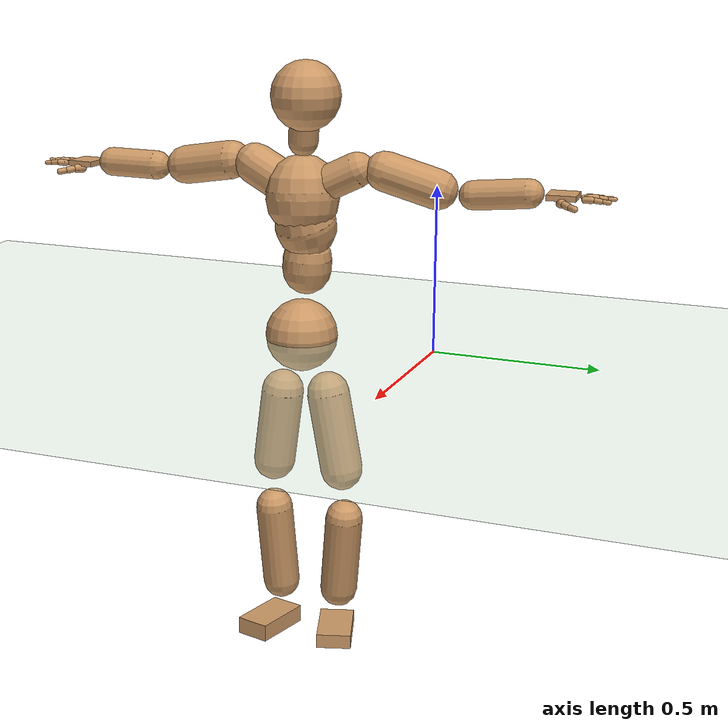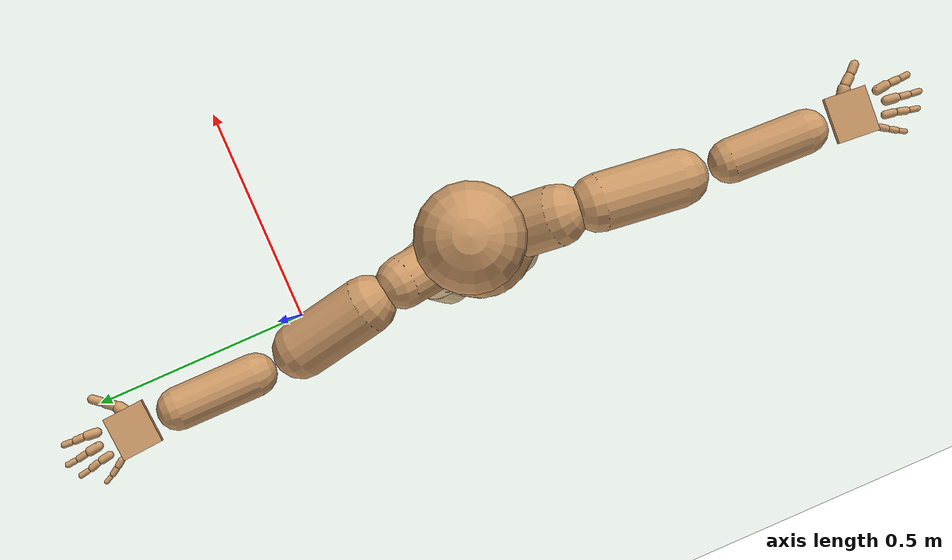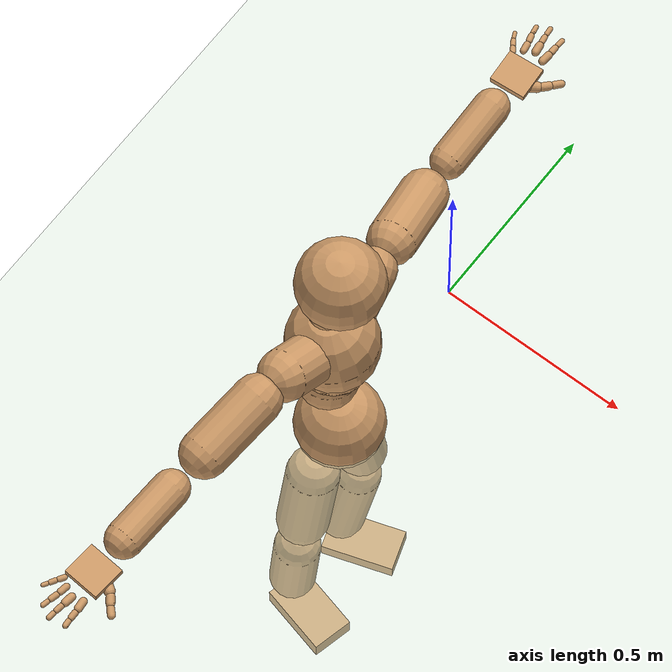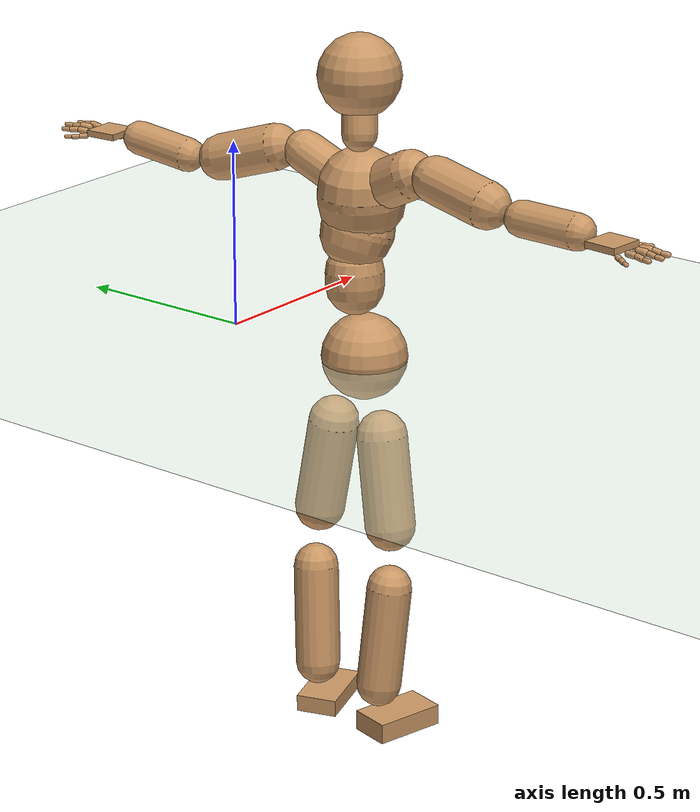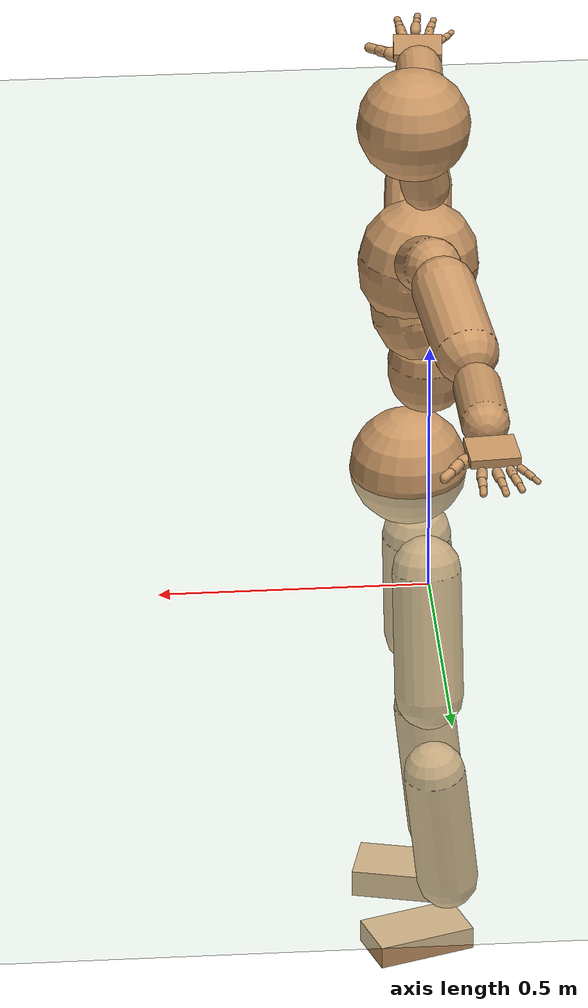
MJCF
<mujoco model="humanoid">
  <compiler coordinate="local" angle="radian"/>
  <default>
    <joint damping="0.0" armature="0.01" stiffness="0.0" limited="true"/>
    <geom conaffinity="1" condim="3" contype="7" margin="0.001" rgba="0.8 0.6 .4 1"/>
  </default>
  <asset>
    <texture type="skybox" builtin="gradient" rgb1=".4 .5 .6" rgb2="0 0 0" width="100" height="100"/>
    <texture builtin="flat" height="1278" mark="cross" markrgb="1 1 1" name="texgeom" random="0.01" rgb1="0.8 0.6 0.4" rgb2="0.8 0.6 0.4" type="cube" width="127"/>
    <texture builtin="checker" height="100" name="texplane" rgb1="0 0 0" rgb2="0.8 0.8 0.8" type="2d" width="100"/>
    <material name="MatPlane" reflectance="0.5" shininess="1" specular="1" texrepeat="60 60" texture="texplane"/>
    <material name="geom" texture="texgeom" texuniform="true"/>
  </asset>
  <worldbody>
    <light cutoff="100" diffuse="1 1 1" dir="-0 0 -1.3" directional="true" exponent="1" pos="0 0 1.3" specular=".1 .1 .1"/>
    <geom conaffinity="1" condim="3" name="floor" pos="0 0 0" rgba="0.8 0.9 0.8 1" size="100 100 .2" type="plane" material="MatPlane"/>
    <body name="Pelvis" pos="0.0013 -0.4284 0.0089">
      <freejoint name="Pelvis"/>
      <geom type="sphere" contype="1" conaffinity="1" density="500" size="0.1118" pos="0.0000 0.0000 0.0000" name="Pelvis"/>
      <body name="L_Hip" pos="-0.0284 0.0616 -0.104">
        <joint name="L_Hip_x" type="hinge" pos="0 0 0" axis="1 0 0" stiffness="800" damping="80" armature="0.02" range="-180.0000 180.0000"/>
        <joint name="L_Hip_y" type="hinge" pos="0 0 0" axis="0 1 0" stiffness="800" damping="80" armature="0.02" range="-180.0000 180.0000"/>
        <joint name="L_Hip_z" type="hinge" pos="0 0 0" axis="0 0 1" stiffness="800" damping="80" armature="0.02" range="-180.0000 180.0000"/>
        <geom type="capsule" contype="1" conaffinity="1" density="500" fromto="-0.0008 0.0150 -0.0830 -0.0033 0.0602 -0.3320" size="0.066" name="L_Hip"/>
        <body name="L_Knee" pos="-0.0042 0.0752 -0.415">
          <joint name="L_Knee_x" type="hinge" pos="0 0 0" axis="1 0 0" stiffness="800" damping="80" armature="0.02" range="-180.0000 180.0000"/>
          <joint name="L_Knee_y" type="hinge" pos="0 0 0" axis="0 1 0" stiffness="800" damping="80" armature="0.02" range="-180.0000 180.0000"/>
          <joint name="L_Knee_z" type="hinge" pos="0 0 0" axis="0 0 1" stiffness="800" damping="80" armature="0.02" range="-180.0000 180.0000"/>
          <geom type="capsule" contype="1" conaffinity="1" density="500" fromto="-0.0098 -0.0099 -0.0867 -0.0393 -0.0395 -0.3469" size="0.059" name="L_Knee"/>
          <body name="L_Ankle" pos="-0.0491 -0.0494 -0.4336">
            <joint name="L_Ankle_x" type="hinge" pos="0 0 0" axis="1 0 0" stiffness="800" damping="80" armature="0.02" range="-180.0000 180.0000"/>
            <joint name="L_Ankle_y" type="hinge" pos="0 0 0" axis="0 1 0" stiffness="800" damping="80" armature="0.02" range="-180.0000 180.0000"/>
            <joint name="L_Ankle_z" type="hinge" pos="0 0 0" axis="0 0 1" stiffness="800" damping="80" armature="0.02" range="-180.0000 180.0000"/>
            <geom type="box" contype="1" conaffinity="1" density="500" pos="0.0699 0.0229 -0.0310" size="0.0953 0.0544 0.0223" quat="0.9875 0.0000 0.0000 0.1579" name="L_Ankle"/>
            <body name="L_Toe" pos="0.1398 0.0459 -0.062">
              <joint name="L_Toe_x" type="hinge" pos="0 0 0" axis="1 0 0" stiffness="500" damping="50" armature="0.02" range="-180.0000 180.0000"/>
              <joint name="L_Toe_y" type="hinge" pos="0 0 0" axis="0 1 0" stiffness="500" damping="50" armature="0.02" range="-180.0000 180.0000"/>
              <joint name="L_Toe_z" type="hinge" pos="0 0 0" axis="0 0 1" stiffness="500" damping="50" armature="0.02" range="-180.0000 180.0000"/>
              <geom type="box" contype="1" conaffinity="1" density="500" pos="0.0000 0.0000 0.0308" size="0.0011 0.0026 0.0011" quat="0.9868 0.0000 0.0000 0.1621" name="L_Toe"/>
            </body>
          </body>
        </body>
      </body>
      <body name="R_Hip" pos="-0.0205 -0.0636 -0.1152">
        <joint name="R_Hip_x" type="hinge" pos="0 0 0" axis="1 0 0" stiffness="800" damping="80" armature="0.02" range="-180.0000 180.0000"/>
        <joint name="R_Hip_y" type="hinge" pos="0 0 0" axis="0 1 0" stiffness="800" damping="80" armature="0.02" range="-180.0000 180.0000"/>
        <joint name="R_Hip_z" type="hinge" pos="0 0 0" axis="0 0 1" stiffness="800" damping="80" armature="0.02" range="-180.0000 180.0000"/>
        <geom type="capsule" contype="1" conaffinity="1" density="500" fromto="-0.0026 -0.0114 -0.0794 -0.0104 -0.0456 -0.3177" size="0.0659" name="R_Hip"/>
        <body name="R_Knee" pos="-0.013 -0.057 -0.3972">
          <joint name="R_Knee_x" type="hinge" pos="0 0 0" axis="1 0 0" stiffness="800" damping="80" armature="0.02" range="-180.0000 180.0000"/>
          <joint name="R_Knee_y" type="hinge" pos="0 0 0" axis="0 1 0" stiffness="800" damping="80" armature="0.02" range="-180.0000 180.0000"/>
          <joint name="R_Knee_z" type="hinge" pos="0 0 0" axis="0 0 1" stiffness="800" damping="80" armature="0.02" range="-180.0000 180.0000"/>
          <geom type="capsule" contype="1" conaffinity="1" density="500" fromto="-0.0095 0.0037 -0.0895 -0.0380 0.0148 -0.3581" size="0.0588" name="R_Knee"/>
          <body name="R_Ankle" pos="-0.0475 0.0185 -0.4476">
            <joint name="R_Ankle_x" type="hinge" pos="0 0 0" axis="1 0 0" stiffness="800" damping="80" armature="0.02" range="-180.0000 180.0000"/>
            <joint name="R_Ankle_y" type="hinge" pos="0 0 0" axis="0 1 0" stiffness="800" damping="80" armature="0.02" range="-180.0000 180.0000"/>
            <joint name="R_Ankle_z" type="hinge" pos="0 0 0" axis="0 0 1" stiffness="800" damping="80" armature="0.02" range="-180.0000 180.0000"/>
            <geom type="box" contype="1" conaffinity="1" density="500" pos="0.0732 -0.0180 -0.0305" size="0.0953 0.0544 0.0271" quat="0.9927 0.0000 0.0000 -0.1206" name="R_Ankle"/>
            <body name="R_Toe" pos="0.1463 -0.0361 -0.0611">
              <joint name="R_Toe_x" type="hinge" pos="0 0 0" axis="1 0 0" stiffness="500" damping="50" armature="0.02" range="-180.0000 180.0000"/>
              <joint name="R_Toe_y" type="hinge" pos="0 0 0" axis="0 1 0" stiffness="500" damping="50" armature="0.02" range="-180.0000 180.0000"/>
              <joint name="R_Toe_z" type="hinge" pos="0 0 0" axis="0 0 1" stiffness="500" damping="50" armature="0.02" range="-180.0000 180.0000"/>
              <geom type="box" contype="1" conaffinity="1" density="500" pos="0.0000 0.0000 0.0255" size="0.0011 0.0026 0.0011" quat="0.9936 0.0000 0.0000 -0.1127" name="R_Toe"/>
            </body>
          </body>
        </body>
      </body>
      <body name="Torso" pos="-0.0384 -0.0024 0.1272">
        <joint name="Torso_x" type="hinge" pos="0 0 0" axis="1 0 0" stiffness="1000" damping="100" armature="0.02" range="-180.0000 180.0000"/>
        <joint name="Torso_y" type="hinge" pos="0 0 0" axis="0 1 0" stiffness="1000" damping="100" armature="0.02" range="-180.0000 180.0000"/>
        <joint name="Torso_z" type="hinge" pos="0 0 0" axis="0 0 1" stiffness="1000" damping="100" armature="0.02" range="-180.0000 180.0000"/>
        <geom type="capsule" contype="1" conaffinity="1" density="500" fromto="0.0033 0.0075 0.1078 0.0022 0.0050 0.0719" size="0.0755" name="Torso"/>
        <body name="Spine" pos="0.0055 0.0125 0.1797">
          <joint name="Spine_x" type="hinge" pos="0 0 0" axis="1 0 0" stiffness="1000" damping="100" armature="0.02" range="-180.0000 180.0000"/>
          <joint name="Spine_y" type="hinge" pos="0 0 0" axis="0 1 0" stiffness="1000" damping="100" armature="0.02" range="-180.0000 180.0000"/>
          <joint name="Spine_z" type="hinge" pos="0 0 0" axis="0 0 1" stiffness="1000" damping="100" armature="0.02" range="-180.0000 180.0000"/>
          <geom type="capsule" contype="1" conaffinity="1" density="500" fromto="0.0129 -0.0059 0.0404 0.0086 -0.0039 0.0270" size="0.0944" name="Spine"/>
          <body name="Chest" pos="0.0215 -0.0098 0.0674">
            <joint name="Chest_x" type="hinge" pos="0 0 0" axis="1 0 0" stiffness="1000" damping="100" armature="0.02" range="-180.0000 180.0000"/>
            <joint name="Chest_y" type="hinge" pos="0 0 0" axis="0 1 0" stiffness="1000" damping="100" armature="0.02" range="-180.0000 180.0000"/>
            <joint name="Chest_z" type="hinge" pos="0 0 0" axis="0 0 1" stiffness="1000" damping="100" armature="0.02" range="-180.0000 180.0000"/>
            <geom type="capsule" contype="1" conaffinity="1" density="500" fromto="-0.0065 -0.0031 0.0705 -0.0043 -0.0021 0.0470" size="0.1125" name="Chest"/>
            <body name="Neck" pos="-0.0243 -0.0107 0.1835">
              <joint name="Neck_x" type="hinge" pos="0 0 0" axis="1 0 0" stiffness="500" damping="50" armature="0.02" range="-180.0000 180.0000"/>
              <joint name="Neck_y" type="hinge" pos="0 0 0" axis="0 1 0" stiffness="500" damping="50" armature="0.02" range="-180.0000 180.0000"/>
              <joint name="Neck_z" type="hinge" pos="0 0 0" axis="0 0 1" stiffness="500" damping="50" armature="0.02" range="-180.0000 180.0000"/>
              <geom type="capsule" contype="1" conaffinity="1" density="500" fromto="0.0060 0.0048 0.0351 0.0242 0.0192 0.1402" size="0.0456" name="Neck"/>
              <body name="Head" pos="0.0302 0.024 0.1753">
                <joint name="Head_x" type="hinge" pos="0 0 0" axis="1 0 0" stiffness="500" damping="50" armature="0.02" range="-180.0000 180.0000"/>
                <joint name="Head_y" type="hinge" pos="0 0 0" axis="0 1 0" stiffness="500" damping="50" armature="0.02" range="-180.0000 180.0000"/>
                <joint name="Head_z" type="hinge" pos="0 0 0" axis="0 0 1" stiffness="500" damping="50" armature="0.02" range="-180.0000 180.0000"/>
                <geom type="sphere" contype="1" conaffinity="1" density="500" size="0.1064" pos="0.0000 0.0000 0.0000" name="Head"/>
              </body>
            </body>
            <body name="L_Thorax" pos="-0.0019 0.0447 0.0843">
              <joint name="L_Thorax_x" type="hinge" pos="0 0 0" axis="1 0 0" stiffness="500" damping="50" armature="0.02" range="-180.0000 180.0000"/>
              <joint name="L_Thorax_y" type="hinge" pos="0 0 0" axis="0 1 0" stiffness="500" damping="50" armature="0.02" range="-180.0000 180.0000"/>
              <joint name="L_Thorax_z" type="hinge" pos="0 0 0" axis="0 0 1" stiffness="500" damping="50" armature="0.02" range="-180.0000 180.0000"/>
              <geom type="capsule" contype="1" conaffinity="1" density="500" fromto="-0.0038 0.0310 0.0150 -0.0151 0.1238 0.0601" size="0.0537" name="L_Thorax"/>
              <body name="L_Shoulder" pos="-0.0189 0.1548 0.0752">
                <joint name="L_Shoulder_x" type="hinge" pos="0 0 0" axis="1 0 0" stiffness="500" damping="50" armature="0.02" range="-180.0000 180.0000"/>
                <joint name="L_Shoulder_y" type="hinge" pos="0 0 0" axis="0 1 0" stiffness="500" damping="50" armature="0.02" range="-180.0000 180.0000"/>
                <joint name="L_Shoulder_z" type="hinge" pos="0 0 0" axis="0 0 1" stiffness="500" damping="50" armature="0.02" range="-180.0000 180.0000"/>
                <geom type="capsule" contype="1" conaffinity="1" density="500" fromto="-0.0094 0.0521 -0.0163 -0.0377 0.2085 -0.0651" size="0.0602" name="L_Shoulder"/>
                <body name="L_Elbow" pos="-0.0472 0.2607 -0.0814">
                  <joint name="L_Elbow_x" type="hinge" pos="0 0 0" axis="1 0 0" stiffness="500" damping="50" armature="0.02" range="-720.0000 720.0000"/>
                  <joint name="L_Elbow_y" type="hinge" pos="0 0 0" axis="0 1 0" stiffness="500" damping="50" armature="0.02" range="-720.0000 720.0000"/>
                  <joint name="L_Elbow_z" type="hinge" pos="0 0 0" axis="0 0 1" stiffness="500" damping="50" armature="0.02" range="-720.0000 720.0000"/>
                  <geom type="capsule" contype="1" conaffinity="1" density="500" fromto="0.0000 0.0551 0.0055 0.0001 0.2206 0.0220" size="0.0443" name="L_Elbow"/>
                  <body name="L_Wrist" pos="0.0001 0.2757 0.0275">
                    <joint name="L_Wrist_x" type="hinge" pos="0 0 0" axis="1 0 0" stiffness="300" damping="30" armature="0.02" range="-180.0000 180.0000"/>
                    <joint name="L_Wrist_y" type="hinge" pos="0 0 0" axis="0 1 0" stiffness="300" damping="30" armature="0.02" range="-180.0000 180.0000"/>
                    <joint name="L_Wrist_z" type="hinge" pos="0 0 0" axis="0 0 1" stiffness="300" damping="30" armature="0.02" range="-180.0000 180.0000"/>
                    <geom type="box" contype="1" conaffinity="1" density="500" pos="-0.0033 0.0458 -0.0059" size="0.0431 0.0458 0.0083" quat="0.7319 0.0000 0.0000 -0.6815" name="L_Wrist"/>
                    <body name="L_Index1" pos="0.0205 0.1074 -0.0089">
                      <joint name="L_Index1_x" type="hinge" pos="0 0 0" axis="1 0 0" stiffness="100" damping="10" armature="0.02" range="-180.0000 180.0000"/>
                      <joint name="L_Index1_y" type="hinge" pos="0 0 0" axis="0 1 0" stiffness="100" damping="10" armature="0.02" range="-180.0000 180.0000"/>
                      <joint name="L_Index1_z" type="hinge" pos="0 0 0" axis="0 0 1" stiffness="100" damping="10" armature="0.02" range="-180.0000 180.0000"/>
                      <geom type="capsule" contype="1" conaffinity="1" density="500" fromto="0.0007 0.0067 0.0003 0.0029 0.0269 0.0013" size="0.0098" name="L_Index1"/>
                      <body name="L_Index2" pos="0.0036 0.0336 0.0016">
                        <joint name="L_Index2_x" type="hinge" pos="0 0 0" axis="1 0 0" stiffness="100" damping="10" armature="0.02" range="-180.0000 180.0000"/>
                        <joint name="L_Index2_y" type="hinge" pos="0 0 0" axis="0 1 0" stiffness="100" damping="10" armature="0.02" range="-180.0000 180.0000"/>
                        <joint name="L_Index2_z" type="hinge" pos="0 0 0" axis="0 0 1" stiffness="100" damping="10" armature="0.02" range="-180.0000 180.0000"/>
                        <geom type="capsule" contype="1" conaffinity="1" density="500" fromto="-0.0001 0.0047 -0.0006 -0.0002 0.0188 -0.0023" size="0.008" name="L_Index2"/>
                        <body name="L_Index3" pos="-0.0003 0.0235 -0.0029">
                          <joint name="L_Index3_x" type="hinge" pos="0 0 0" axis="1 0 0" stiffness="100" damping="10" armature="0.02" range="-180.0000 180.0000"/>
                          <joint name="L_Index3_y" type="hinge" pos="0 0 0" axis="0 1 0" stiffness="100" damping="10" armature="0.02" range="-180.0000 180.0000"/>
                          <joint name="L_Index3_z" type="hinge" pos="0 0 0" axis="0 0 1" stiffness="100" damping="10" armature="0.02" range="-180.0000 180.0000"/>
                          <geom type="capsule" contype="1" conaffinity="1" density="500" fromto="0.0003 0.0051 -0.0002 0.0014 0.0204 -0.0007" size="0.0067" name="L_Index3"/>
                        </body>
                      </body>
                    </body>
                    <body name="L_Middle1" pos="-0.0042 0.1155 -0.0057">
                      <joint name="L_Middle1_x" type="hinge" pos="0 0 0" axis="1 0 0" stiffness="100" damping="10" armature="0.02" range="-180.0000 180.0000"/>
                      <joint name="L_Middle1_y" type="hinge" pos="0 0 0" axis="0 1 0" stiffness="100" damping="10" armature="0.02" range="-180.0000 180.0000"/>
                      <joint name="L_Middle1_z" type="hinge" pos="0 0 0" axis="0 0 1" stiffness="100" damping="10" armature="0.02" range="-180.0000 180.0000"/>
                      <geom type="capsule" contype="1" conaffinity="1" density="500" fromto="-0.0008 0.0064 0.0001 -0.0034 0.0255 0.0005" size="0.0099" name="L_Middle1"/>
                      <body name="L_Middle2" pos="-0.0042 0.0319 0.0006">
                        <joint name="L_Middle2_x" type="hinge" pos="0 0 0" axis="1 0 0" stiffness="100" damping="10" armature="0.02" range="-180.0000 180.0000"/>
                        <joint name="L_Middle2_y" type="hinge" pos="0 0 0" axis="0 1 0" stiffness="100" damping="10" armature="0.02" range="-180.0000 180.0000"/>
                        <joint name="L_Middle2_z" type="hinge" pos="0 0 0" axis="0 0 1" stiffness="100" damping="10" armature="0.02" range="-180.0000 180.0000"/>
                        <geom type="capsule" contype="1" conaffinity="1" density="500" fromto="-0.0009 0.0049 -0.0005 -0.0035 0.0195 -0.0020" size="0.0073" name="L_Middle2"/>
                        <body name="L_Middle3" pos="-0.0043 0.0244 -0.0025">
                          <joint name="L_Middle3_x" type="hinge" pos="0 0 0" axis="1 0 0" stiffness="100" damping="10" armature="0.02" range="-180.0000 180.0000"/>
                          <joint name="L_Middle3_y" type="hinge" pos="0 0 0" axis="0 1 0" stiffness="100" damping="10" armature="0.02" range="-180.0000 180.0000"/>
                          <joint name="L_Middle3_z" type="hinge" pos="0 0 0" axis="0 0 1" stiffness="100" damping="10" armature="0.02" range="-180.0000 180.0000"/>
                          <geom type="capsule" contype="1" conaffinity="1" density="500" fromto="-0.0005 0.0053 -0.0001 -0.0019 0.0211 -0.0004" size="0.0063" name="L_Middle3"/>
                        </body>
                      </body>
                    </body>
                    <body name="L_Pinky1" pos="-0.0471 0.0894 -0.0146">
                      <joint name="L_Pinky1_x" type="hinge" pos="0 0 0" axis="1 0 0" stiffness="100" damping="10" armature="0.02" range="-180.0000 180.0000"/>
                      <joint name="L_Pinky1_y" type="hinge" pos="0 0 0" axis="0 1 0" stiffness="100" damping="10" armature="0.02" range="-180.0000 180.0000"/>
                      <joint name="L_Pinky1_z" type="hinge" pos="0 0 0" axis="0 0 1" stiffness="100" damping="10" armature="0.02" range="-180.0000 180.0000"/>
                      <geom type="capsule" contype="1" conaffinity="1" density="500" fromto="-0.0024 0.0034 -0.0003 -0.0095 0.0136 -0.0014" size="0.0071" name="L_Pinky1"/>
                      <body name="L_Pinky2" pos="-0.0118 0.017 -0.0017">
                        <joint name="L_Pinky2_x" type="hinge" pos="0 0 0" axis="1 0 0" stiffness="100" damping="10" armature="0.02" range="-180.0000 180.0000"/>
                        <joint name="L_Pinky2_y" type="hinge" pos="0 0 0" axis="0 1 0" stiffness="100" damping="10" armature="0.02" range="-180.0000 180.0000"/>
                        <joint name="L_Pinky2_z" type="hinge" pos="0 0 0" axis="0 0 1" stiffness="100" damping="10" armature="0.02" range="-180.0000 180.0000"/>
                        <geom type="capsule" contype="1" conaffinity="1" density="500" fromto="-0.0022 0.0034 -0.0004 -0.0088 0.0135 -0.0016" size="0.0066" name="L_Pinky2"/>
                        <body name="L_Pinky3" pos="-0.011 0.0168 -0.002">
                          <joint name="L_Pinky3_x" type="hinge" pos="0 0 0" axis="1 0 0" stiffness="100" damping="10" armature="0.02" range="-180.0000 180.0000"/>
                          <joint name="L_Pinky3_y" type="hinge" pos="0 0 0" axis="0 1 0" stiffness="100" damping="10" armature="0.02" range="-180.0000 180.0000"/>
                          <joint name="L_Pinky3_z" type="hinge" pos="0 0 0" axis="0 0 1" stiffness="100" damping="10" armature="0.02" range="-180.0000 180.0000"/>
                          <geom type="capsule" contype="1" conaffinity="1" density="500" fromto="-0.0018 0.0038 -0.0000 -0.0072 0.0151 -0.0000" size="0.005" name="L_Pinky3"/>
                        </body>
                      </body>
                    </body>
                    <body name="L_Ring1" pos="-0.0293 0.1032 -0.0087">
                      <joint name="L_Ring1_x" type="hinge" pos="0 0 0" axis="1 0 0" stiffness="100" damping="10" armature="0.02" range="-180.0000 180.0000"/>
                      <joint name="L_Ring1_y" type="hinge" pos="0 0 0" axis="0 1 0" stiffness="100" damping="10" armature="0.02" range="-180.0000 180.0000"/>
                      <joint name="L_Ring1_z" type="hinge" pos="0 0 0" axis="0 0 1" stiffness="100" damping="10" armature="0.02" range="-180.0000 180.0000"/>
                      <geom type="capsule" contype="1" conaffinity="1" density="500" fromto="-0.0010 0.0059 0.0001 -0.0039 0.0237 0.0005" size="0.0084" name="L_Ring1"/>
                      <body name="L_Ring2" pos="-0.0049 0.0296 0.0007">
                        <joint name="L_Ring2_x" type="hinge" pos="0 0 0" axis="1 0 0" stiffness="100" damping="10" armature="0.02" range="-180.0000 180.0000"/>
                        <joint name="L_Ring2_y" type="hinge" pos="0 0 0" axis="0 1 0" stiffness="100" damping="10" armature="0.02" range="-180.0000 180.0000"/>
                        <joint name="L_Ring2_z" type="hinge" pos="0 0 0" axis="0 0 1" stiffness="100" damping="10" armature="0.02" range="-180.0000 180.0000"/>
                        <geom type="capsule" contype="1" conaffinity="1" density="500" fromto="-0.0013 0.0048 -0.0005 -0.0054 0.0192 -0.0019" size="0.0077" name="L_Ring2"/>
                        <body name="L_Ring3" pos="-0.0067 0.024 -0.0024">
                          <joint name="L_Ring3_x" type="hinge" pos="0 0 0" axis="1 0 0" stiffness="100" damping="10" armature="0.02" range="-180.0000 180.0000"/>
                          <joint name="L_Ring3_y" type="hinge" pos="0 0 0" axis="0 1 0" stiffness="100" damping="10" armature="0.02" range="-180.0000 180.0000"/>
                          <joint name="L_Ring3_z" type="hinge" pos="0 0 0" axis="0 0 1" stiffness="100" damping="10" armature="0.02" range="-180.0000 180.0000"/>
                          <geom type="capsule" contype="1" conaffinity="1" density="500" fromto="-0.0009 0.0052 -0.0001 -0.0038 0.0208 -0.0003" size="0.006" name="L_Ring3"/>
                        </body>
                      </body>
                    </body>
                    <body name="L_Thumb1" pos="0.0273 0.0423 -0.0208">
                      <joint name="L_Thumb1_x" type="hinge" pos="0 0 0" axis="1 0 0" stiffness="100" damping="10" armature="0.02" range="-180.0000 180.0000"/>
                      <joint name="L_Thumb1_y" type="hinge" pos="0 0 0" axis="0 1 0" stiffness="100" damping="10" armature="0.02" range="-180.0000 180.0000"/>
                      <joint name="L_Thumb1_z" type="hinge" pos="0 0 0" axis="0 0 1" stiffness="100" damping="10" armature="0.02" range="-180.0000 180.0000"/>
                      <geom type="capsule" contype="1" conaffinity="1" density="500" fromto="0.0055 0.0035 0.0005 0.0219 0.0141 0.0018" size="0.0133" name="L_Thumb1"/>
                      <body name="L_Thumb2" pos="0.0274 0.0176 0.0023">
                        <joint name="L_Thumb2_x" type="hinge" pos="0 0 0" axis="1 0 0" stiffness="100" damping="10" armature="0.02" range="-180.0000 180.0000"/>
                        <joint name="L_Thumb2_y" type="hinge" pos="0 0 0" axis="0 1 0" stiffness="100" damping="10" armature="0.02" range="-180.0000 180.0000"/>
                        <joint name="L_Thumb2_z" type="hinge" pos="0 0 0" axis="0 0 1" stiffness="100" damping="10" armature="0.02" range="-180.0000 180.0000"/>
                        <geom type="capsule" contype="1" conaffinity="1" density="500" fromto="0.0034 0.0043 -0.0009 0.0135 0.0173 -0.0038" size="0.0106" name="L_Thumb2"/>
                        <body name="L_Thumb3" pos="0.0168 0.0216 -0.0047">
                          <joint name="L_Thumb3_x" type="hinge" pos="0 0 0" axis="1 0 0" stiffness="100" damping="10" armature="0.02" range="-180.0000 180.0000"/>
                          <joint name="L_Thumb3_y" type="hinge" pos="0 0 0" axis="0 1 0" stiffness="100" damping="10" armature="0.02" range="-180.0000 180.0000"/>
                          <joint name="L_Thumb3_z" type="hinge" pos="0 0 0" axis="0 0 1" stiffness="100" damping="10" armature="0.02" range="-180.0000 180.0000"/>
                          <geom type="capsule" contype="1" conaffinity="1" density="500" fromto="0.0038 0.0047 -0.0005 0.0151 0.0189 -0.0022" size="0.0093" name="L_Thumb3"/>
                        </body>
                      </body>
                    </body>
                  </body>
                </body>
              </body>
            </body>
            <body name="R_Thorax" pos="-0.0062 -0.0494 0.0847">
              <joint name="R_Thorax_x" type="hinge" pos="0 0 0" axis="1 0 0" stiffness="500" damping="50" armature="0.02" range="-180.0000 180.0000"/>
              <joint name="R_Thorax_y" type="hinge" pos="0 0 0" axis="0 1 0" stiffness="500" damping="50" armature="0.02" range="-180.0000 180.0000"/>
              <joint name="R_Thorax_z" type="hinge" pos="0 0 0" axis="0 0 1" stiffness="500" damping="50" armature="0.02" range="-180.0000 180.0000"/>
              <geom type="capsule" contype="1" conaffinity="1" density="500" fromto="-0.0032 -0.0287 0.0145 -0.0127 -0.1147 0.0579" size="0.0632" name="R_Thorax"/>
              <body name="R_Shoulder" pos="-0.0159 -0.1434 0.0724">
                <joint name="R_Shoulder_x" type="hinge" pos="0 0 0" axis="1 0 0" stiffness="500" damping="50" armature="0.02" range="-180.0000 180.0000"/>
                <joint name="R_Shoulder_y" type="hinge" pos="0 0 0" axis="0 1 0" stiffness="500" damping="50" armature="0.02" range="-180.0000 180.0000"/>
                <joint name="R_Shoulder_z" type="hinge" pos="0 0 0" axis="0 0 1" stiffness="500" damping="50" armature="0.02" range="-180.0000 180.0000"/>
                <geom type="capsule" contype="1" conaffinity="1" density="500" fromto="-0.0067 -0.0559 -0.0096 -0.0267 -0.2234 -0.0384" size="0.0595" name="R_Shoulder"/>
                <body name="R_Elbow" pos="-0.0334 -0.2793 -0.048">
                  <joint name="R_Elbow_x" type="hinge" pos="0 0 0" axis="1 0 0" stiffness="500" damping="50" armature="0.02" range="-720.0000 720.0000"/>
                  <joint name="R_Elbow_y" type="hinge" pos="0 0 0" axis="0 1 0" stiffness="500" damping="50" armature="0.02" range="-720.0000 720.0000"/>
                  <joint name="R_Elbow_z" type="hinge" pos="0 0 0" axis="0 0 1" stiffness="500" damping="50" armature="0.02" range="-720.0000 720.0000"/>
                  <geom type="capsule" contype="1" conaffinity="1" density="500" fromto="-0.0023 -0.0535 0.0000 -0.0092 -0.2140 0.0001" size="0.0454" name="R_Elbow"/>
                  <body name="R_Wrist" pos="-0.0116 -0.2675 0.0002">
                    <joint name="R_Wrist_x" type="hinge" pos="0 0 0" axis="1 0 0" stiffness="300" damping="30" armature="0.02" range="-180.0000 180.0000"/>
                    <joint name="R_Wrist_y" type="hinge" pos="0 0 0" axis="0 1 0" stiffness="300" damping="30" armature="0.02" range="-180.0000 180.0000"/>
                    <joint name="R_Wrist_z" type="hinge" pos="0 0 0" axis="0 0 1" stiffness="300" damping="30" armature="0.02" range="-180.0000 180.0000"/>
                    <geom type="box" contype="1" conaffinity="1" density="500" pos="-0.0037 -0.0455 -0.0077" size="0.0431 0.0469 0.0085" quat="0.7351 0.0000 0.0000 0.6780" name="R_Wrist"/>
                    <body name="R_Index1" pos="0.0197 -0.1069 -0.0126">
                      <joint name="R_Index1_x" type="hinge" pos="0 0 0" axis="1 0 0" stiffness="100" damping="10" armature="0.02" range="-180.0000 180.0000"/>
                      <joint name="R_Index1_y" type="hinge" pos="0 0 0" axis="0 1 0" stiffness="100" damping="10" armature="0.02" range="-180.0000 180.0000"/>
                      <joint name="R_Index1_z" type="hinge" pos="0 0 0" axis="0 0 1" stiffness="100" damping="10" armature="0.02" range="-180.0000 180.0000"/>
                      <geom type="capsule" contype="1" conaffinity="1" density="500" fromto="0.0007 -0.0067 0.0003 0.0029 -0.0269 0.0013" size="0.0098" name="R_Index1"/>
                      <body name="R_Index2" pos="0.0036 -0.0336 0.0016">
                        <joint name="R_Index2_x" type="hinge" pos="0 0 0" axis="1 0 0" stiffness="100" damping="10" armature="0.02" range="-180.0000 180.0000"/>
                        <joint name="R_Index2_y" type="hinge" pos="0 0 0" axis="0 1 0" stiffness="100" damping="10" armature="0.02" range="-180.0000 180.0000"/>
                        <joint name="R_Index2_z" type="hinge" pos="0 0 0" axis="0 0 1" stiffness="100" damping="10" armature="0.02" range="-180.0000 180.0000"/>
                        <geom type="capsule" contype="1" conaffinity="1" density="500" fromto="-0.0001 -0.0047 -0.0006 -0.0002 -0.0188 -0.0023" size="0.008" name="R_Index2"/>
                        <body name="R_Index3" pos="-0.0003 -0.0235 -0.0029">
                          <joint name="R_Index3_x" type="hinge" pos="0 0 0" axis="1 0 0" stiffness="100" damping="10" armature="0.02" range="-180.0000 180.0000"/>
                          <joint name="R_Index3_y" type="hinge" pos="0 0 0" axis="0 1 0" stiffness="100" damping="10" armature="0.02" range="-180.0000 180.0000"/>
                          <joint name="R_Index3_z" type="hinge" pos="0 0 0" axis="0 0 1" stiffness="100" damping="10" armature="0.02" range="-180.0000 180.0000"/>
                          <geom type="capsule" contype="1" conaffinity="1" density="500" fromto="0.0003 -0.0043 -0.0002 0.0014 -0.0172 -0.0007" size="0.007" name="R_Index3"/>
                        </body>
                      </body>
                    </body>
                    <body name="R_Middle1" pos="-0.005 -0.115 -0.0095">
                      <joint name="R_Middle1_x" type="hinge" pos="0 0 0" axis="1 0 0" stiffness="100" damping="10" armature="0.02" range="-180.0000 180.0000"/>
                      <joint name="R_Middle1_y" type="hinge" pos="0 0 0" axis="0 1 0" stiffness="100" damping="10" armature="0.02" range="-180.0000 180.0000"/>
                      <joint name="R_Middle1_z" type="hinge" pos="0 0 0" axis="0 0 1" stiffness="100" damping="10" armature="0.02" range="-180.0000 180.0000"/>
                      <geom type="capsule" contype="1" conaffinity="1" density="500" fromto="-0.0008 -0.0064 0.0001 -0.0034 -0.0255 0.0005" size="0.0099" name="R_Middle1"/>
                      <body name="R_Middle2" pos="-0.0042 -0.0319 0.0006">
                        <joint name="R_Middle2_x" type="hinge" pos="0 0 0" axis="1 0 0" stiffness="100" damping="10" armature="0.02" range="-180.0000 180.0000"/>
                        <joint name="R_Middle2_y" type="hinge" pos="0 0 0" axis="0 1 0" stiffness="100" damping="10" armature="0.02" range="-180.0000 180.0000"/>
                        <joint name="R_Middle2_z" type="hinge" pos="0 0 0" axis="0 0 1" stiffness="100" damping="10" armature="0.02" range="-180.0000 180.0000"/>
                        <geom type="capsule" contype="1" conaffinity="1" density="500" fromto="-0.0009 -0.0049 -0.0005 -0.0035 -0.0195 -0.0020" size="0.0073" name="R_Middle2"/>
                        <body name="R_Middle3" pos="-0.0043 -0.0244 -0.0025">
                          <joint name="R_Middle3_x" type="hinge" pos="0 0 0" axis="1 0 0" stiffness="100" damping="10" armature="0.02" range="-180.0000 180.0000"/>
                          <joint name="R_Middle3_y" type="hinge" pos="0 0 0" axis="0 1 0" stiffness="100" damping="10" armature="0.02" range="-180.0000 180.0000"/>
                          <joint name="R_Middle3_z" type="hinge" pos="0 0 0" axis="0 0 1" stiffness="100" damping="10" armature="0.02" range="-180.0000 180.0000"/>
                          <geom type="capsule" contype="1" conaffinity="1" density="500" fromto="-0.0005 -0.0045 -0.0001 -0.0019 -0.0179 -0.0004" size="0.0066" name="R_Middle3"/>
                        </body>
                      </body>
                    </body>
                    <body name="R_Pinky1" pos="-0.0479 -0.0888 -0.0183">
                      <joint name="R_Pinky1_x" type="hinge" pos="0 0 0" axis="1 0 0" stiffness="100" damping="10" armature="0.02" range="-180.0000 180.0000"/>
                      <joint name="R_Pinky1_y" type="hinge" pos="0 0 0" axis="0 1 0" stiffness="100" damping="10" armature="0.02" range="-180.0000 180.0000"/>
                      <joint name="R_Pinky1_z" type="hinge" pos="0 0 0" axis="0 0 1" stiffness="100" damping="10" armature="0.02" range="-180.0000 180.0000"/>
                      <geom type="capsule" contype="1" conaffinity="1" density="500" fromto="-0.0024 -0.0034 -0.0003 -0.0095 -0.0136 -0.0014" size="0.0071" name="R_Pinky1"/>
                      <body name="R_Pinky2" pos="-0.0118 -0.017 -0.0017">
                        <joint name="R_Pinky2_x" type="hinge" pos="0 0 0" axis="1 0 0" stiffness="100" damping="10" armature="0.02" range="-180.0000 180.0000"/>
                        <joint name="R_Pinky2_y" type="hinge" pos="0 0 0" axis="0 1 0" stiffness="100" damping="10" armature="0.02" range="-180.0000 180.0000"/>
                        <joint name="R_Pinky2_z" type="hinge" pos="0 0 0" axis="0 0 1" stiffness="100" damping="10" armature="0.02" range="-180.0000 180.0000"/>
                        <geom type="capsule" contype="1" conaffinity="1" density="500" fromto="-0.0022 -0.0034 -0.0004 -0.0088 -0.0135 -0.0016" size="0.0066" name="R_Pinky2"/>
                        <body name="R_Pinky3" pos="-0.011 -0.0168 -0.002">
                          <joint name="R_Pinky3_x" type="hinge" pos="0 0 0" axis="1 0 0" stiffness="100" damping="10" armature="0.02" range="-180.0000 180.0000"/>
                          <joint name="R_Pinky3_y" type="hinge" pos="0 0 0" axis="0 1 0" stiffness="100" damping="10" armature="0.02" range="-180.0000 180.0000"/>
                          <joint name="R_Pinky3_z" type="hinge" pos="0 0 0" axis="0 0 1" stiffness="100" damping="10" armature="0.02" range="-180.0000 180.0000"/>
                          <geom type="capsule" contype="1" conaffinity="1" density="500" fromto="-0.0018 -0.0030 -0.0000 -0.0072 -0.0119 -0.0000" size="0.0053" name="R_Pinky3"/>
                        </body>
                      </body>
                    </body>
                    <body name="R_Ring1" pos="-0.0301 -0.1026 -0.0124">
                      <joint name="R_Ring1_x" type="hinge" pos="0 0 0" axis="1 0 0" stiffness="100" damping="10" armature="0.02" range="-180.0000 180.0000"/>
                      <joint name="R_Ring1_y" type="hinge" pos="0 0 0" axis="0 1 0" stiffness="100" damping="10" armature="0.02" range="-180.0000 180.0000"/>
                      <joint name="R_Ring1_z" type="hinge" pos="0 0 0" axis="0 0 1" stiffness="100" damping="10" armature="0.02" range="-180.0000 180.0000"/>
                      <geom type="capsule" contype="1" conaffinity="1" density="500" fromto="-0.0010 -0.0059 0.0001 -0.0039 -0.0237 0.0005" size="0.0084" name="R_Ring1"/>
                      <body name="R_Ring2" pos="-0.0049 -0.0296 0.0007">
                        <joint name="R_Ring2_x" type="hinge" pos="0 0 0" axis="1 0 0" stiffness="100" damping="10" armature="0.02" range="-180.0000 180.0000"/>
                        <joint name="R_Ring2_y" type="hinge" pos="0 0 0" axis="0 1 0" stiffness="100" damping="10" armature="0.02" range="-180.0000 180.0000"/>
                        <joint name="R_Ring2_z" type="hinge" pos="0 0 0" axis="0 0 1" stiffness="100" damping="10" armature="0.02" range="-180.0000 180.0000"/>
                        <geom type="capsule" contype="1" conaffinity="1" density="500" fromto="-0.0013 -0.0048 -0.0005 -0.0054 -0.0192 -0.0019" size="0.0077" name="R_Ring2"/>
                        <body name="R_Ring3" pos="-0.0067 -0.024 -0.0024">
                          <joint name="R_Ring3_x" type="hinge" pos="0 0 0" axis="1 0 0" stiffness="100" damping="10" armature="0.02" range="-180.0000 180.0000"/>
                          <joint name="R_Ring3_y" type="hinge" pos="0 0 0" axis="0 1 0" stiffness="100" damping="10" armature="0.02" range="-180.0000 180.0000"/>
                          <joint name="R_Ring3_z" type="hinge" pos="0 0 0" axis="0 0 1" stiffness="100" damping="10" armature="0.02" range="-180.0000 180.0000"/>
                          <geom type="capsule" contype="1" conaffinity="1" density="500" fromto="-0.0009 -0.0044 -0.0001 -0.0038 -0.0176 -0.0003" size="0.0062" name="R_Ring3"/>
                        </body>
                      </body>
                    </body>
                    <body name="R_Thumb1" pos="0.0265 -0.0418 -0.0245">
                      <joint name="R_Thumb1_x" type="hinge" pos="0 0 0" axis="1 0 0" stiffness="100" damping="10" armature="0.02" range="-180.0000 180.0000"/>
                      <joint name="R_Thumb1_y" type="hinge" pos="0 0 0" axis="0 1 0" stiffness="100" damping="10" armature="0.02" range="-180.0000 180.0000"/>
                      <joint name="R_Thumb1_z" type="hinge" pos="0 0 0" axis="0 0 1" stiffness="100" damping="10" armature="0.02" range="-180.0000 180.0000"/>
                      <geom type="capsule" contype="1" conaffinity="1" density="500" fromto="0.0055 -0.0035 0.0005 0.0219 -0.0141 0.0018" size="0.0133" name="R_Thumb1"/>
                      <body name="R_Thumb2" pos="0.0274 -0.0176 0.0023">
                        <joint name="R_Thumb2_x" type="hinge" pos="0 0 0" axis="1 0 0" stiffness="100" damping="10" armature="0.02" range="-180.0000 180.0000"/>
                        <joint name="R_Thumb2_y" type="hinge" pos="0 0 0" axis="0 1 0" stiffness="100" damping="10" armature="0.02" range="-180.0000 180.0000"/>
                        <joint name="R_Thumb2_z" type="hinge" pos="0 0 0" axis="0 0 1" stiffness="100" damping="10" armature="0.02" range="-180.0000 180.0000"/>
                        <geom type="capsule" contype="1" conaffinity="1" density="500" fromto="0.0034 -0.0043 -0.0009 0.0135 -0.0173 -0.0038" size="0.0106" name="R_Thumb2"/>
                        <body name="R_Thumb3" pos="0.0168 -0.0216 -0.0047">
                          <joint name="R_Thumb3_x" type="hinge" pos="0 0 0" axis="1 0 0" stiffness="100" damping="10" armature="0.02" range="-180.0000 180.0000"/>
                          <joint name="R_Thumb3_y" type="hinge" pos="0 0 0" axis="0 1 0" stiffness="100" damping="10" armature="0.02" range="-180.0000 180.0000"/>
                          <joint name="R_Thumb3_z" type="hinge" pos="0 0 0" axis="0 0 1" stiffness="100" damping="10" armature="0.02" range="-180.0000 180.0000"/>
                          <geom type="capsule" contype="1" conaffinity="1" density="500" fromto="0.0038 -0.0039 -0.0005 0.0151 -0.0157 -0.0022" size="0.0095" name="R_Thumb3"/>
                        </body>
                      </body>
                    </body>
                  </body>
                </body>
              </body>
            </body>
          </body>
        </body>
      </body>
    </body>
  </worldbody>
  <actuator>
    <motor name="L_Hip_x" joint="L_Hip_x" gear="500"/>
    <motor name="L_Hip_y" joint="L_Hip_y" gear="500"/>
    <motor name="L_Hip_z" joint="L_Hip_z" gear="500"/>
    <motor name="L_Knee_x" joint="L_Knee_x" gear="500"/>
    <motor name="L_Knee_y" joint="L_Knee_y" gear="500"/>
    <motor name="L_Knee_z" joint="L_Knee_z" gear="500"/>
    <motor name="L_Ankle_x" joint="L_Ankle_x" gear="500"/>
    <motor name="L_Ankle_y" joint="L_Ankle_y" gear="500"/>
    <motor name="L_Ankle_z" joint="L_Ankle_z" gear="500"/>
    <motor name="L_Toe_x" joint="L_Toe_x" gear="500"/>
    <motor name="L_Toe_y" joint="L_Toe_y" gear="500"/>
    <motor name="L_Toe_z" joint="L_Toe_z" gear="500"/>
    <motor name="R_Hip_x" joint="R_Hip_x" gear="500"/>
    <motor name="R_Hip_y" joint="R_Hip_y" gear="500"/>
    <motor name="R_Hip_z" joint="R_Hip_z" gear="500"/>
    <motor name="R_Knee_x" joint="R_Knee_x" gear="500"/>
    <motor name="R_Knee_y" joint="R_Knee_y" gear="500"/>
    <motor name="R_Knee_z" joint="R_Knee_z" gear="500"/>
    <motor name="R_Ankle_x" joint="R_Ankle_x" gear="500"/>
    <motor name="R_Ankle_y" joint="R_Ankle_y" gear="500"/>
    <motor name="R_Ankle_z" joint="R_Ankle_z" gear="500"/>
    <motor name="R_Toe_x" joint="R_Toe_x" gear="500"/>
    <motor name="R_Toe_y" joint="R_Toe_y" gear="500"/>
    <motor name="R_Toe_z" joint="R_Toe_z" gear="500"/>
    <motor name="Torso_x" joint="Torso_x" gear="500"/>
    <motor name="Torso_y" joint="Torso_y" gear="500"/>
    <motor name="Torso_z" joint="Torso_z" gear="500"/>
    <motor name="Spine_x" joint="Spine_x" gear="500"/>
    <motor name="Spine_y" joint="Spine_y" gear="500"/>
    <motor name="Spine_z" joint="Spine_z" gear="500"/>
    <motor name="Chest_x" joint="Chest_x" gear="500"/>
    <motor name="Chest_y" joint="Chest_y" gear="500"/>
    <motor name="Chest_z" joint="Chest_z" gear="500"/>
    <motor name="Neck_x" joint="Neck_x" gear="500"/>
    <motor name="Neck_y" joint="Neck_y" gear="500"/>
    <motor name="Neck_z" joint="Neck_z" gear="500"/>
    <motor name="Head_x" joint="Head_x" gear="500"/>
    <motor name="Head_y" joint="Head_y" gear="500"/>
    <motor name="Head_z" joint="Head_z" gear="500"/>
    <motor name="L_Thorax_x" joint="L_Thorax_x" gear="500"/>
    <motor name="L_Thorax_y" joint="L_Thorax_y" gear="500"/>
    <motor name="L_Thorax_z" joint="L_Thorax_z" gear="500"/>
    <motor name="L_Shoulder_x" joint="L_Shoulder_x" gear="500"/>
    <motor name="L_Shoulder_y" joint="L_Shoulder_y" gear="500"/>
    <motor name="L_Shoulder_z" joint="L_Shoulder_z" gear="500"/>
    <motor name="L_Elbow_x" joint="L_Elbow_x" gear="500"/>
    <motor name="L_Elbow_y" joint="L_Elbow_y" gear="500"/>
    <motor name="L_Elbow_z" joint="L_Elbow_z" gear="500"/>
    <motor name="L_Wrist_x" joint="L_Wrist_x" gear="500"/>
    <motor name="L_Wrist_y" joint="L_Wrist_y" gear="500"/>
    <motor name="L_Wrist_z" joint="L_Wrist_z" gear="500"/>
    <motor name="L_Index1_x" joint="L_Index1_x" gear="500"/>
    <motor name="L_Index1_y" joint="L_Index1_y" gear="500"/>
    <motor name="L_Index1_z" joint="L_Index1_z" gear="500"/>
    <motor name="L_Index2_x" joint="L_Index2_x" gear="500"/>
    <motor name="L_Index2_y" joint="L_Index2_y" gear="500"/>
    <motor name="L_Index2_z" joint="L_Index2_z" gear="500"/>
    <motor name="L_Index3_x" joint="L_Index3_x" gear="500"/>
    <motor name="L_Index3_y" joint="L_Index3_y" gear="500"/>
    <motor name="L_Index3_z" joint="L_Index3_z" gear="500"/>
    <motor name="L_Middle1_x" joint="L_Middle1_x" gear="500"/>
    <motor name="L_Middle1_y" joint="L_Middle1_y" gear="500"/>
    <motor name="L_Middle1_z" joint="L_Middle1_z" gear="500"/>
    <motor name="L_Middle2_x" joint="L_Middle2_x" gear="500"/>
    <motor name="L_Middle2_y" joint="L_Middle2_y" gear="500"/>
    <motor name="L_Middle2_z" joint="L_Middle2_z" gear="500"/>
    <motor name="L_Middle3_x" joint="L_Middle3_x" gear="500"/>
    <motor name="L_Middle3_y" joint="L_Middle3_y" gear="500"/>
    <motor name="L_Middle3_z" joint="L_Middle3_z" gear="500"/>
    <motor name="L_Pinky1_x" joint="L_Pinky1_x" gear="500"/>
    <motor name="L_Pinky1_y" joint="L_Pinky1_y" gear="500"/>
    <motor name="L_Pinky1_z" joint="L_Pinky1_z" gear="500"/>
    <motor name="L_Pinky2_x" joint="L_Pinky2_x" gear="500"/>
    <motor name="L_Pinky2_y" joint="L_Pinky2_y" gear="500"/>
    <motor name="L_Pinky2_z" joint="L_Pinky2_z" gear="500"/>
    <motor name="L_Pinky3_x" joint="L_Pinky3_x" gear="500"/>
    <motor name="L_Pinky3_y" joint="L_Pinky3_y" gear="500"/>
    <motor name="L_Pinky3_z" joint="L_Pinky3_z" gear="500"/>
    <motor name="L_Ring1_x" joint="L_Ring1_x" gear="500"/>
    <motor name="L_Ring1_y" joint="L_Ring1_y" gear="500"/>
    <motor name="L_Ring1_z" joint="L_Ring1_z" gear="500"/>
    <motor name="L_Ring2_x" joint="L_Ring2_x" gear="500"/>
    <motor name="L_Ring2_y" joint="L_Ring2_y" gear="500"/>
    <motor name="L_Ring2_z" joint="L_Ring2_z" gear="500"/>
    <motor name="L_Ring3_x" joint="L_Ring3_x" gear="500"/>
    <motor name="L_Ring3_y" joint="L_Ring3_y" gear="500"/>
    <motor name="L_Ring3_z" joint="L_Ring3_z" gear="500"/>
    <motor name="L_Thumb1_x" joint="L_Thumb1_x" gear="500"/>
    <motor name="L_Thumb1_y" joint="L_Thumb1_y" gear="500"/>
    <motor name="L_Thumb1_z" joint="L_Thumb1_z" gear="500"/>
    <motor name="L_Thumb2_x" joint="L_Thumb2_x" gear="500"/>
    <motor name="L_Thumb2_y" joint="L_Thumb2_y" gear="500"/>
    <motor name="L_Thumb2_z" joint="L_Thumb2_z" gear="500"/>
    <motor name="L_Thumb3_x" joint="L_Thumb3_x" gear="500"/>
    <motor name="L_Thumb3_y" joint="L_Thumb3_y" gear="500"/>
    <motor name="L_Thumb3_z" joint="L_Thumb3_z" gear="500"/>
    <motor name="R_Thorax_x" joint="R_Thorax_x" gear="500"/>
    <motor name="R_Thorax_y" joint="R_Thorax_y" gear="500"/>
    <motor name="R_Thorax_z" joint="R_Thorax_z" gear="500"/>
    <motor name="R_Shoulder_x" joint="R_Shoulder_x" gear="500"/>
    <motor name="R_Shoulder_y" joint="R_Shoulder_y" gear="500"/>
    <motor name="R_Shoulder_z" joint="R_Shoulder_z" gear="500"/>
    <motor name="R_Elbow_x" joint="R_Elbow_x" gear="500"/>
    <motor name="R_Elbow_y" joint="R_Elbow_y" gear="500"/>
    <motor name="R_Elbow_z" joint="R_Elbow_z" gear="500"/>
    <motor name="R_Wrist_x" joint="R_Wrist_x" gear="500"/>
    <motor name="R_Wrist_y" joint="R_Wrist_y" gear="500"/>
    <motor name="R_Wrist_z" joint="R_Wrist_z" gear="500"/>
    <motor name="R_Index1_x" joint="R_Index1_x" gear="500"/>
    <motor name="R_Index1_y" joint="R_Index1_y" gear="500"/>
    <motor name="R_Index1_z" joint="R_Index1_z" gear="500"/>
    <motor name="R_Index2_x" joint="R_Index2_x" gear="500"/>
    <motor name="R_Index2_y" joint="R_Index2_y" gear="500"/>
    <motor name="R_Index2_z" joint="R_Index2_z" gear="500"/>
    <motor name="R_Index3_x" joint="R_Index3_x" gear="500"/>
    <motor name="R_Index3_y" joint="R_Index3_y" gear="500"/>
    <motor name="R_Index3_z" joint="R_Index3_z" gear="500"/>
    <motor name="R_Middle1_x" joint="R_Middle1_x" gear="500"/>
    <motor name="R_Middle1_y" joint="R_Middle1_y" gear="500"/>
    <motor name="R_Middle1_z" joint="R_Middle1_z" gear="500"/>
    <motor name="R_Middle2_x" joint="R_Middle2_x" gear="500"/>
    <motor name="R_Middle2_y" joint="R_Middle2_y" gear="500"/>
    <motor name="R_Middle2_z" joint="R_Middle2_z" gear="500"/>
    <motor name="R_Middle3_x" joint="R_Middle3_x" gear="500"/>
    <motor name="R_Middle3_y" joint="R_Middle3_y" gear="500"/>
    <motor name="R_Middle3_z" joint="R_Middle3_z" gear="500"/>
    <motor name="R_Pinky1_x" joint="R_Pinky1_x" gear="500"/>
    <motor name="R_Pinky1_y" joint="R_Pinky1_y" gear="500"/>
    <motor name="R_Pinky1_z" joint="R_Pinky1_z" gear="500"/>
    <motor name="R_Pinky2_x" joint="R_Pinky2_x" gear="500"/>
    <motor name="R_Pinky2_y" joint="R_Pinky2_y" gear="500"/>
    <motor name="R_Pinky2_z" joint="R_Pinky2_z" gear="500"/>
    <motor name="R_Pinky3_x" joint="R_Pinky3_x" gear="500"/>
    <motor name="R_Pinky3_y" joint="R_Pinky3_y" gear="500"/>
    <motor name="R_Pinky3_z" joint="R_Pinky3_z" gear="500"/>
    <motor name="R_Ring1_x" joint="R_Ring1_x" gear="500"/>
    <motor name="R_Ring1_y" joint="R_Ring1_y" gear="500"/>
    <motor name="R_Ring1_z" joint="R_Ring1_z" gear="500"/>
    <motor name="R_Ring2_x" joint="R_Ring2_x" gear="500"/>
    <motor name="R_Ring2_y" joint="R_Ring2_y" gear="500"/>
    <motor name="R_Ring2_z" joint="R_Ring2_z" gear="500"/>
    <motor name="R_Ring3_x" joint="R_Ring3_x" gear="500"/>
    <motor name="R_Ring3_y" joint="R_Ring3_y" gear="500"/>
    <motor name="R_Ring3_z" joint="R_Ring3_z" gear="500"/>
    <motor name="R_Thumb1_x" joint="R_Thumb1_x" gear="500"/>
    <motor name="R_Thumb1_y" joint="R_Thumb1_y" gear="500"/>
    <motor name="R_Thumb1_z" joint="R_Thumb1_z" gear="500"/>
    <motor name="R_Thumb2_x" joint="R_Thumb2_x" gear="500"/>
    <motor name="R_Thumb2_y" joint="R_Thumb2_y" gear="500"/>
    <motor name="R_Thumb2_z" joint="R_Thumb2_z" gear="500"/>
    <motor name="R_Thumb3_x" joint="R_Thumb3_x" gear="500"/>
    <motor name="R_Thumb3_y" joint="R_Thumb3_y" gear="500"/>
    <motor name="R_Thumb3_z" joint="R_Thumb3_z" gear="500"/>
  </actuator>
  <contact>
    <exclude body1="Torso" body2="Chest"/>
    <exclude body1="Head" body2="Chest"/>
    <exclude body1="R_Knee" body2="R_Toe"/>
    <exclude body1="R_Knee" body2="L_Ankle"/>
    <exclude body1="R_Knee" body2="L_Toe"/>
    <exclude body1="L_Knee" body2="L_Toe"/>
    <exclude body1="L_Knee" body2="R_Ankle"/>
    <exclude body1="L_Knee" body2="R_Toe"/>
    <exclude body1="L_Shoulder" body2="Chest"/>
    <exclude body1="R_Shoulder" body2="Chest"/>
  </contact>
  <sensor/>
  <size njmax="700" nconmax="700"/>
</mujoco>
